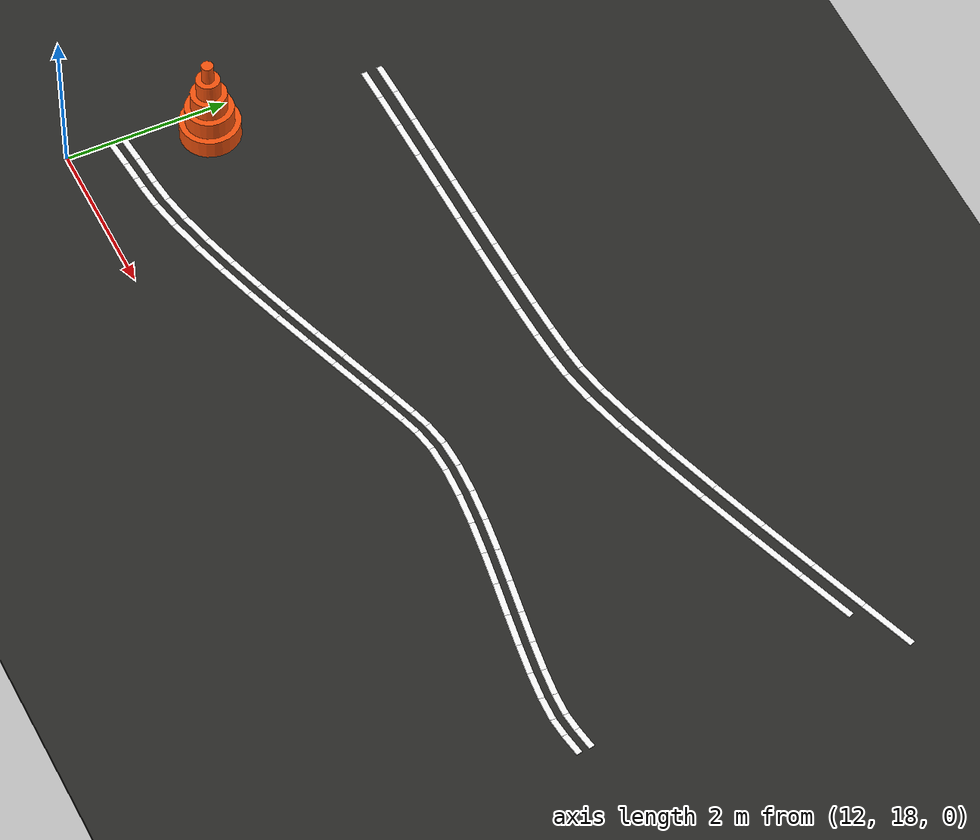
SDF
<sdf version="1.9">
 <world name="igvc_competition">
  <model name="asphalt_ground">
   <static>1</static>
   <pose>16.0000 4.0000 -0.0250 0.000000 0.000000 0.000000</pose>
   <link name="link">
    <collision name="collision"><geometry><box><size>60.0000 58.0000 0.0500</size></box></geometry></collision>
    <visual name="visual">
     <geometry><box><size>60.0000 58.0000 0.0500</size></box></geometry>
     <material>
      <ambient>0.16 0.16 0.15 1.0</ambient>
      <diffuse>0.16 0.16 0.15 1.0</diffuse>
      <specular>0.05 0.05 0.05 1</specular>
     </material>
    </visual>
   </link>
  </model>
  <model name="Line_001_0059">
   <static>1</static>
   <pose>22.0241 23.5799 0.011 0 0 -2.799809</pose>
   <link name="link">
    <visual name="visual">
     <geometry><box><size>0.7325 0.0762 0.012</size></box></geometry>
     <material>
      <ambient>0.98 0.98 0.98 1</ambient>
      <diffuse>0.98 0.98 0.98 1</diffuse>
      <specular>0.05 0.05 0.05 1</specular>
      <emissive>0.9 0.9 0.9 1</emissive>
     </material>
    </visual>
   </link>
  </model>
  <model name="Line_001_0060">
   <static>1</static>
   <pose>21.3852 23.1403 0.011 0 0 -2.799991</pose>
   <link name="link">
    <visual name="visual">
     <geometry><box><size>0.7663 0.0762 0.012</size></box></geometry>
     <material>
      <ambient>0.98 0.98 0.98 1</ambient>
      <diffuse>0.98 0.98 0.98 1</diffuse>
      <specular>0.05 0.05 0.05 1</specular>
      <emissive>0.9 0.9 0.9 1</emissive>
     </material>
    </visual>
   </link>
  </model>
  <model name="Line_001_0061">
   <static>1</static>
   <pose>21.3183 23.3289 0.011 0 0 -2.800062</pose>
   <link name="link">
    <visual name="visual">
     <geometry><box><size>0.7658 0.0762 0.012</size></box></geometry>
     <material>
      <ambient>0.98 0.98 0.98 1</ambient>
      <diffuse>0.98 0.98 0.98 1</diffuse>
      <specular>0.05 0.05 0.05 1</specular>
      <emissive>0.9 0.9 0.9 1</emissive>
     </material>
    </visual>
   </link>
  </model>
  <model name="Line_001_0062">
   <static>1</static>
   <pose>20.6593 22.8839 0.011 0 0 -2.803856</pose>
   <link name="link">
    <visual name="visual">
     <geometry><box><size>0.7735 0.0762 0.012</size></box></geometry>
     <material>
      <ambient>0.98 0.98 0.98 1</ambient>
      <diffuse>0.98 0.98 0.98 1</diffuse>
      <specular>0.05 0.05 0.05 1</specular>
      <emissive>0.9 0.9 0.9 1</emissive>
     </material>
    </visual>
   </link>
  </model>
  <model name="Line_001_0063">
   <static>1</static>
   <pose>20.5932 23.0726 0.011 0 0 -2.803751</pose>
   <link name="link">
    <visual name="visual">
     <geometry><box><size>0.7724 0.0762 0.012</size></box></geometry>
     <material>
      <ambient>0.98 0.98 0.98 1</ambient>
      <diffuse>0.98 0.98 0.98 1</diffuse>
      <specular>0.05 0.05 0.05 1</specular>
      <emissive>0.9 0.9 0.9 1</emissive>
     </material>
    </visual>
   </link>
  </model>
  <model name="Line_001_0064">
   <static>1</static>
   <pose>19.9378 22.6334 0.011 0 0 -2.811328</pose>
   <link name="link">
    <visual name="visual">
     <geometry><box><size>0.7539 0.0762 0.012</size></box></geometry>
     <material>
      <ambient>0.98 0.98 0.98 1</ambient>
      <diffuse>0.98 0.98 0.98 1</diffuse>
      <specular>0.05 0.05 0.05 1</specular>
      <emissive>0.9 0.9 0.9 1</emissive>
     </material>
    </visual>
   </link>
  </model>
  <model name="Line_001_0065">
   <static>1</static>
   <pose>19.8732 22.8227 0.011 0 0 -2.811346</pose>
   <link name="link">
    <visual name="visual">
     <geometry><box><size>0.7518 0.0762 0.012</size></box></geometry>
     <material>
      <ambient>0.98 0.98 0.98 1</ambient>
      <diffuse>0.98 0.98 0.98 1</diffuse>
      <specular>0.05 0.05 0.05 1</specular>
      <emissive>0.9 0.9 0.9 1</emissive>
     </material>
    </visual>
   </link>
  </model>
  <model name="Line_001_0066">
   <static>1</static>
   <pose>19.2451 22.4007 0.011 0 0 -2.824088</pose>
   <link name="link">
    <visual name="visual">
     <geometry><box><size>0.7076 0.0762 0.012</size></box></geometry>
     <material>
      <ambient>0.98 0.98 0.98 1</ambient>
      <diffuse>0.98 0.98 0.98 1</diffuse>
      <specular>0.05 0.05 0.05 1</specular>
      <emissive>0.9 0.9 0.9 1</emissive>
     </material>
    </visual>
   </link>
  </model>
  <model name="Line_001_0067">
   <static>1</static>
   <pose>19.1830 22.5908 0.011 0 0 -2.824107</pose>
   <link name="link">
    <visual name="visual">
     <geometry><box><size>0.7044 0.0762 0.012</size></box></geometry>
     <material>
      <ambient>0.98 0.98 0.98 1</ambient>
      <diffuse>0.98 0.98 0.98 1</diffuse>
      <specular>0.05 0.05 0.05 1</specular>
      <emissive>0.9 0.9 0.9 1</emissive>
     </material>
    </visual>
   </link>
  </model>
  <model name="Line_001_0068">
   <static>1</static>
   <pose>18.6053 22.1973 0.011 0 0 -2.844436</pose>
   <link name="link">
    <visual name="visual">
     <geometry><box><size>0.6352 0.0762 0.012</size></box></geometry>
     <material>
      <ambient>0.98 0.98 0.98 1</ambient>
      <diffuse>0.98 0.98 0.98 1</diffuse>
      <specular>0.05 0.05 0.05 1</specular>
      <emissive>0.9 0.9 0.9 1</emissive>
     </material>
    </visual>
   </link>
  </model>
  <model name="Line_001_0069">
   <static>1</static>
   <pose>18.5474 22.3887 0.011 0 0 -2.844355</pose>
   <link name="link">
    <visual name="visual">
     <geometry><box><size>0.6296 0.0762 0.012</size></box></geometry>
     <material>
      <ambient>0.98 0.98 0.98 1</ambient>
      <diffuse>0.98 0.98 0.98 1</diffuse>
      <specular>0.05 0.05 0.05 1</specular>
      <emissive>0.9 0.9 0.9 1</emissive>
     </material>
    </visual>
   </link>
  </model>
  <model name="Line_001_0070">
   <static>1</static>
   <pose>18.0420 22.0345 0.011 0 0 -2.879061</pose>
   <link name="link">
    <visual name="visual">
     <geometry><box><size>0.5375 0.0762 0.012</size></box></geometry>
     <material>
      <ambient>0.98 0.98 0.98 1</ambient>
      <diffuse>0.98 0.98 0.98 1</diffuse>
      <specular>0.05 0.05 0.05 1</specular>
      <emissive>0.9 0.9 0.9 1</emissive>
     </material>
    </visual>
   </link>
  </model>
  <model name="Line_001_0071">
   <static>1</static>
   <pose>17.9916 22.2280 0.011 0 0 -2.878915</pose>
   <link name="link">
    <visual name="visual">
     <geometry><box><size>0.5276 0.0762 0.012</size></box></geometry>
     <material>
      <ambient>0.98 0.98 0.98 1</ambient>
      <diffuse>0.98 0.98 0.98 1</diffuse>
      <specular>0.05 0.05 0.05 1</specular>
      <emissive>0.9 0.9 0.9 1</emissive>
     </material>
    </visual>
   </link>
  </model>
  <model name="Line_001_0072">
   <static>1</static>
   <pose>17.5790 21.9242 0.011 0 0 -2.944386</pose>
   <link name="link">
    <visual name="visual">
     <geometry><box><size>0.4149 0.0762 0.012</size></box></geometry>
     <material>
      <ambient>0.98 0.98 0.98 1</ambient>
      <diffuse>0.98 0.98 0.98 1</diffuse>
      <specular>0.05 0.05 0.05 1</specular>
      <emissive>0.9 0.9 0.9 1</emissive>
     </material>
    </visual>
   </link>
  </model>
  <model name="Line_001_0073">
   <static>1</static>
   <pose>17.5410 22.1204 0.011 0 0 -2.944344</pose>
   <link name="link">
    <visual name="visual">
     <geometry><box><size>0.3995 0.0762 0.012</size></box></geometry>
     <material>
      <ambient>0.98 0.98 0.98 1</ambient>
      <diffuse>0.98 0.98 0.98 1</diffuse>
      <specular>0.05 0.05 0.05 1</specular>
      <emissive>0.9 0.9 0.9 1</emissive>
     </material>
    </visual>
   </link>
  </model>
  <model name="Line_001_0074">
   <static>1</static>
   <pose>17.2276 21.8672 0.011 0 0 -3.032233</pose>
   <link name="link">
    <visual name="visual">
     <geometry><box><size>0.2978 0.0762 0.012</size></box></geometry>
     <material>
      <ambient>0.98 0.98 0.98 1</ambient>
      <diffuse>0.98 0.98 0.98 1</diffuse>
      <specular>0.05 0.05 0.05 1</specular>
      <emissive>0.9 0.9 0.9 1</emissive>
     </material>
    </visual>
   </link>
  </model>
  <model name="Line_001_0075">
   <static>1</static>
   <pose>17.2032 22.0656 0.011 0 0 -3.032406</pose>
   <link name="link">
    <visual name="visual">
     <geometry><box><size>0.2854 0.0762 0.012</size></box></geometry>
     <material>
      <ambient>0.98 0.98 0.98 1</ambient>
      <diffuse>0.98 0.98 0.98 1</diffuse>
      <specular>0.05 0.05 0.05 1</specular>
      <emissive>0.9 0.9 0.9 1</emissive>
     </material>
    </visual>
   </link>
  </model>
  <model name="Line_001_0076">
   <static>1</static>
   <pose>16.8955 21.8374 0.011 0 0 -3.068124</pose>
   <link name="link">
    <visual name="visual">
     <geometry><box><size>0.3692 0.0762 0.012</size></box></geometry>
     <material>
      <ambient>0.98 0.98 0.98 1</ambient>
      <diffuse>0.98 0.98 0.98 1</diffuse>
      <specular>0.05 0.05 0.05 1</specular>
      <emissive>0.9 0.9 0.9 1</emissive>
     </material>
    </visual>
   </link>
  </model>
  <model name="Line_001_0077">
   <static>1</static>
   <pose>16.8800 22.0368 0.011 0 0 -3.068385</pose>
   <link name="link">
    <visual name="visual">
     <geometry><box><size>0.3637 0.0762 0.012</size></box></geometry>
     <material>
      <ambient>0.98 0.98 0.98 1</ambient>
      <diffuse>0.98 0.98 0.98 1</diffuse>
      <specular>0.05 0.05 0.05 1</specular>
      <emissive>0.9 0.9 0.9 1</emissive>
     </material>
    </visual>
   </link>
  </model>
  <model name="Line_001_0078">
   <static>1</static>
   <pose>16.4969 21.8126 0.011 0 0 -3.088728</pose>
   <link name="link">
    <visual name="visual">
     <geometry><box><size>0.4296 0.0762 0.012</size></box></geometry>
     <material>
      <ambient>0.98 0.98 0.98 1</ambient>
      <diffuse>0.98 0.98 0.98 1</diffuse>
      <specular>0.05 0.05 0.05 1</specular>
      <emissive>0.9 0.9 0.9 1</emissive>
     </material>
    </visual>
   </link>
  </model>
  <model name="Line_001_0079">
   <static>1</static>
   <pose>16.4859 22.0122 0.011 0 0 -3.088541</pose>
   <link name="link">
    <visual name="visual">
     <geometry><box><size>0.4262 0.0762 0.012</size></box></geometry>
     <material>
      <ambient>0.98 0.98 0.98 1</ambient>
      <diffuse>0.98 0.98 0.98 1</diffuse>
      <specular>0.05 0.05 0.05 1</specular>
      <emissive>0.9 0.9 0.9 1</emissive>
     </material>
    </visual>
   </link>
  </model>
  <model name="Line_001_0080">
   <static>1</static>
   <pose>16.0441 21.7916 0.011 0 0 -3.101329</pose>
   <link name="link">
    <visual name="visual">
     <geometry><box><size>0.4770 0.0762 0.012</size></box></geometry>
     <material>
      <ambient>0.98 0.98 0.98 1</ambient>
      <diffuse>0.98 0.98 0.98 1</diffuse>
      <specular>0.05 0.05 0.05 1</specular>
      <emissive>0.9 0.9 0.9 1</emissive>
     </material>
    </visual>
   </link>
  </model>
  <model name="Line_001_0081">
   <static>1</static>
   <pose>16.0358 21.9914 0.011 0 0 -3.101370</pose>
   <link name="link">
    <visual name="visual">
     <geometry><box><size>0.4750 0.0762 0.012</size></box></geometry>
     <material>
      <ambient>0.98 0.98 0.98 1</ambient>
      <diffuse>0.98 0.98 0.98 1</diffuse>
      <specular>0.05 0.05 0.05 1</specular>
      <emissive>0.9 0.9 0.9 1</emissive>
     </material>
    </visual>
   </link>
  </model>
  <model name="Line_001_0082">
   <static>1</static>
   <pose>15.5503 21.7737 0.011 0 0 -3.109308</pose>
   <link name="link">
    <visual name="visual">
     <geometry><box><size>0.5112 0.0762 0.012</size></box></geometry>
     <material>
      <ambient>0.98 0.98 0.98 1</ambient>
      <diffuse>0.98 0.98 0.98 1</diffuse>
      <specular>0.05 0.05 0.05 1</specular>
      <emissive>0.9 0.9 0.9 1</emissive>
     </material>
    </visual>
   </link>
  </model>
  <model name="Line_001_0083">
   <static>1</static>
   <pose>15.5437 21.9736 0.011 0 0 -3.109422</pose>
   <link name="link">
    <visual name="visual">
     <geometry><box><size>0.5099 0.0762 0.012</size></box></geometry>
     <material>
      <ambient>0.98 0.98 0.98 1</ambient>
      <diffuse>0.98 0.98 0.98 1</diffuse>
      <specular>0.05 0.05 0.05 1</specular>
      <emissive>0.9 0.9 0.9 1</emissive>
     </material>
    </visual>
   </link>
  </model>
  <model name="Line_001_0084">
   <static>1</static>
   <pose>15.0290 21.7582 0.011 0 0 -3.114140</pose>
   <link name="link">
    <visual name="visual">
     <geometry><box><size>0.5319 0.0762 0.012</size></box></geometry>
     <material>
      <ambient>0.98 0.98 0.98 1</ambient>
      <diffuse>0.98 0.98 0.98 1</diffuse>
      <specular>0.05 0.05 0.05 1</specular>
      <emissive>0.9 0.9 0.9 1</emissive>
     </material>
    </visual>
   </link>
  </model>
  <model name="Line_001_0085">
   <static>1</static>
   <pose>15.0235 21.9581 0.011 0 0 -3.114287</pose>
   <link name="link">
    <visual name="visual">
     <geometry><box><size>0.5311 0.0762 0.012</size></box></geometry>
     <material>
      <ambient>0.98 0.98 0.98 1</ambient>
      <diffuse>0.98 0.98 0.98 1</diffuse>
      <specular>0.05 0.05 0.05 1</specular>
      <emissive>0.9 0.9 0.9 1</emissive>
     </material>
    </visual>
   </link>
  </model>
  <model name="Line_001_0086">
   <static>1</static>
   <pose>14.4938 21.7443 0.011 0 0 -3.116913</pose>
   <link name="link">
    <visual name="visual">
     <geometry><box><size>0.5390 0.0762 0.012</size></box></geometry>
     <material>
      <ambient>0.98 0.98 0.98 1</ambient>
      <diffuse>0.98 0.98 0.98 1</diffuse>
      <specular>0.05 0.05 0.05 1</specular>
      <emissive>0.9 0.9 0.9 1</emissive>
     </material>
    </visual>
   </link>
  </model>
  <model name="Line_001_0087">
   <static>1</static>
   <pose>14.4887 21.9442 0.011 0 0 -3.116714</pose>
   <link name="link">
    <visual name="visual">
     <geometry><box><size>0.5387 0.0762 0.012</size></box></geometry>
     <material>
      <ambient>0.98 0.98 0.98 1</ambient>
      <diffuse>0.98 0.98 0.98 1</diffuse>
      <specular>0.05 0.05 0.05 1</specular>
      <emissive>0.9 0.9 0.9 1</emissive>
     </material>
    </visual>
   </link>
  </model>
  <model name="Line_001_0088">
   <static>1</static>
   <pose>13.9582 21.7311 0.011 0 0 -3.117367</pose>
   <link name="link">
    <visual name="visual">
     <geometry><box><size>0.5326 0.0762 0.012</size></box></geometry>
     <material>
      <ambient>0.98 0.98 0.98 1</ambient>
      <diffuse>0.98 0.98 0.98 1</diffuse>
      <specular>0.05 0.05 0.05 1</specular>
      <emissive>0.9 0.9 0.9 1</emissive>
     </material>
    </visual>
   </link>
  </model>
  <model name="Line_001_0089">
   <static>1</static>
   <pose>13.9533 21.9310 0.011 0 0 -3.117372</pose>
   <link name="link">
    <visual name="visual">
     <geometry><box><size>0.5327 0.0762 0.012</size></box></geometry>
     <material>
      <ambient>0.98 0.98 0.98 1</ambient>
      <diffuse>0.98 0.98 0.98 1</diffuse>
      <specular>0.05 0.05 0.05 1</specular>
      <emissive>0.9 0.9 0.9 1</emissive>
     </material>
    </visual>
   </link>
  </model>
  <model name="Line_001_0090">
   <static>1</static>
   <pose>13.4359 21.7180 0.011 0 0 -3.115632</pose>
   <link name="link">
    <visual name="visual">
     <geometry><box><size>0.5124 0.0762 0.012</size></box></geometry>
     <material>
      <ambient>0.98 0.98 0.98 1</ambient>
      <diffuse>0.98 0.98 0.98 1</diffuse>
      <specular>0.05 0.05 0.05 1</specular>
      <emissive>0.9 0.9 0.9 1</emissive>
     </material>
    </visual>
   </link>
  </model>
  <model name="Line_001_0091">
   <static>1</static>
   <pose>13.4306 21.9180 0.011 0 0 -3.115662</pose>
   <link name="link">
    <visual name="visual">
     <geometry><box><size>0.5130 0.0762 0.012</size></box></geometry>
     <material>
      <ambient>0.98 0.98 0.98 1</ambient>
      <diffuse>0.98 0.98 0.98 1</diffuse>
      <specular>0.05 0.05 0.05 1</specular>
      <emissive>0.9 0.9 0.9 1</emissive>
     </material>
    </visual>
   </link>
  </model>
  <model name="Line_001_0092">
   <static>1</static>
   <pose>12.9405 21.7043 0.011 0 0 -3.111723</pose>
   <link name="link">
    <visual name="visual">
     <geometry><box><size>0.4788 0.0762 0.012</size></box></geometry>
     <material>
      <ambient>0.98 0.98 0.98 1</ambient>
      <diffuse>0.98 0.98 0.98 1</diffuse>
      <specular>0.05 0.05 0.05 1</specular>
      <emissive>0.9 0.9 0.9 1</emissive>
     </material>
    </visual>
   </link>
  </model>
  <model name="Line_001_0093">
   <static>1</static>
   <pose>12.9344 21.9042 0.011 0 0 -3.111791</pose>
   <link name="link">
    <visual name="visual">
     <geometry><box><size>0.4799 0.0762 0.012</size></box></geometry>
     <material>
      <ambient>0.98 0.98 0.98 1</ambient>
      <diffuse>0.98 0.98 0.98 1</diffuse>
      <specular>0.05 0.05 0.05 1</specular>
      <emissive>0.9 0.9 0.9 1</emissive>
     </material>
    </visual>
   </link>
  </model>
  <model name="Line_001_0094">
   <static>1</static>
   <pose>12.4857 21.6890 0.011 0 0 -3.104015</pose>
   <link name="link">
    <visual name="visual">
     <geometry><box><size>0.4312 0.0762 0.012</size></box></geometry>
     <material>
      <ambient>0.98 0.98 0.98 1</ambient>
      <diffuse>0.98 0.98 0.98 1</diffuse>
      <specular>0.05 0.05 0.05 1</specular>
      <emissive>0.9 0.9 0.9 1</emissive>
     </material>
    </visual>
   </link>
  </model>
  <model name="Line_001_0095">
   <static>1</static>
   <pose>12.4780 21.8889 0.011 0 0 -3.104197</pose>
   <link name="link">
    <visual name="visual">
     <geometry><box><size>0.4333 0.0762 0.012</size></box></geometry>
     <material>
      <ambient>0.98 0.98 0.98 1</ambient>
      <diffuse>0.98 0.98 0.98 1</diffuse>
      <specular>0.05 0.05 0.05 1</specular>
      <emissive>0.9 0.9 0.9 1</emissive>
     </material>
    </visual>
   </link>
  </model>
  <model name="Line_002_0048">
   <static>1</static>
   <pose>21.9990 19.7384 0.011 0 0 -2.984973</pose>
   <link name="link">
    <visual name="visual">
     <geometry><box><size>0.2853 0.0762 0.012</size></box></geometry>
     <material>
      <ambient>0.98 0.98 0.98 1</ambient>
      <diffuse>0.98 0.98 0.98 1</diffuse>
      <specular>0.05 0.05 0.05 1</specular>
      <emissive>0.9 0.9 0.9 1</emissive>
     </material>
    </visual>
   </link>
  </model>
  <model name="Line_002_0049">
   <static>1</static>
   <pose>21.9804 19.8953 0.011 0 0 -2.985352</pose>
   <link name="link">
    <visual name="visual">
     <geometry><box><size>0.2879 0.0762 0.012</size></box></geometry>
     <material>
      <ambient>0.98 0.98 0.98 1</ambient>
      <diffuse>0.98 0.98 0.98 1</diffuse>
      <specular>0.05 0.05 0.05 1</specular>
      <emissive>0.9 0.9 0.9 1</emissive>
     </material>
    </visual>
   </link>
  </model>
  <model name="Line_002_0050">
   <static>1</static>
   <pose>21.7365 19.7039 0.011 0 0 -3.041191</pose>
   <link name="link">
    <visual name="visual">
     <geometry><box><size>0.2444 0.0762 0.012</size></box></geometry>
     <material>
      <ambient>0.98 0.98 0.98 1</ambient>
      <diffuse>0.98 0.98 0.98 1</diffuse>
      <specular>0.05 0.05 0.05 1</specular>
      <emissive>0.9 0.9 0.9 1</emissive>
     </material>
    </visual>
   </link>
  </model>
  <model name="Line_002_0051">
   <static>1</static>
   <pose>21.7242 19.8612 0.011 0 0 -3.039709</pose>
   <link name="link">
    <visual name="visual">
     <geometry><box><size>0.2291 0.0762 0.012</size></box></geometry>
     <material>
      <ambient>0.98 0.98 0.98 1</ambient>
      <diffuse>0.98 0.98 0.98 1</diffuse>
      <specular>0.05 0.05 0.05 1</specular>
      <emissive>0.9 0.9 0.9 1</emissive>
     </material>
    </visual>
   </link>
  </model>
  <model name="Line_002_0052">
   <static>1</static>
   <pose>21.4611 19.6955 0.011 0 0 3.116557</pose>
   <link name="link">
    <visual name="visual">
     <geometry><box><size>0.3076 0.0762 0.012</size></box></geometry>
     <material>
      <ambient>0.98 0.98 0.98 1</ambient>
      <diffuse>0.98 0.98 0.98 1</diffuse>
      <specular>0.05 0.05 0.05 1</specular>
      <emissive>0.9 0.9 0.9 1</emissive>
     </material>
    </visual>
   </link>
  </model>
  <model name="Line_002_0053">
   <static>1</static>
   <pose>21.4646 19.8533 0.011 0 0 3.115852</pose>
   <link name="link">
    <visual name="visual">
     <geometry><box><size>0.2914 0.0762 0.012</size></box></geometry>
     <material>
      <ambient>0.98 0.98 0.98 1</ambient>
      <diffuse>0.98 0.98 0.98 1</diffuse>
      <specular>0.05 0.05 0.05 1</specular>
      <emissive>0.9 0.9 0.9 1</emissive>
     </material>
    </visual>
   </link>
  </model>
  <model name="Line_002_0054">
   <static>1</static>
   <pose>21.1296 19.7156 0.011 0 0 3.050198</pose>
   <link name="link">
    <visual name="visual">
     <geometry><box><size>0.3572 0.0762 0.012</size></box></geometry>
     <material>
      <ambient>0.98 0.98 0.98 1</ambient>
      <diffuse>0.98 0.98 0.98 1</diffuse>
      <specular>0.05 0.05 0.05 1</specular>
      <emissive>0.9 0.9 0.9 1</emissive>
     </material>
    </visual>
   </link>
  </model>
  <model name="Line_002_0055">
   <static>1</static>
   <pose>21.1454 19.8731 0.011 0 0 3.049686</pose>
   <link name="link">
    <visual name="visual">
     <geometry><box><size>0.3487 0.0762 0.012</size></box></geometry>
     <material>
      <ambient>0.98 0.98 0.98 1</ambient>
      <diffuse>0.98 0.98 0.98 1</diffuse>
      <specular>0.05 0.05 0.05 1</specular>
      <emissive>0.9 0.9 0.9 1</emissive>
     </material>
    </visual>
   </link>
  </model>
  <model name="Line_002_0056">
   <static>1</static>
   <pose>20.7547 19.7571 0.011 0 0 3.014365</pose>
   <link name="link">
    <visual name="visual">
     <geometry><box><size>0.3972 0.0762 0.012</size></box></geometry>
     <material>
      <ambient>0.98 0.98 0.98 1</ambient>
      <diffuse>0.98 0.98 0.98 1</diffuse>
      <specular>0.05 0.05 0.05 1</specular>
      <emissive>0.9 0.9 0.9 1</emissive>
     </material>
    </visual>
   </link>
  </model>
  <model name="Line_002_0057">
   <static>1</static>
   <pose>20.7770 19.9140 0.011 0 0 3.014459</pose>
   <link name="link">
    <visual name="visual">
     <geometry><box><size>0.3928 0.0762 0.012</size></box></geometry>
     <material>
      <ambient>0.98 0.98 0.98 1</ambient>
      <diffuse>0.98 0.98 0.98 1</diffuse>
      <specular>0.05 0.05 0.05 1</specular>
      <emissive>0.9 0.9 0.9 1</emissive>
     </material>
    </visual>
   </link>
  </model>
  <model name="Line_002_0058">
   <static>1</static>
   <pose>20.3469 19.8129 0.011 0 0 2.997405</pose>
   <link name="link">
    <visual name="visual">
     <geometry><box><size>0.4259 0.0762 0.012</size></box></geometry>
     <material>
      <ambient>0.98 0.98 0.98 1</ambient>
      <diffuse>0.98 0.98 0.98 1</diffuse>
      <specular>0.05 0.05 0.05 1</specular>
      <emissive>0.9 0.9 0.9 1</emissive>
     </material>
    </visual>
   </link>
  </model>
  <model name="Line_002_0059">
   <static>1</static>
   <pose>20.3723 19.9694 0.011 0 0 2.997295</pose>
   <link name="link">
    <visual name="visual">
     <geometry><box><size>0.4242 0.0762 0.012</size></box></geometry>
     <material>
      <ambient>0.98 0.98 0.98 1</ambient>
      <diffuse>0.98 0.98 0.98 1</diffuse>
      <specular>0.05 0.05 0.05 1</specular>
      <emissive>0.9 0.9 0.9 1</emissive>
     </material>
    </visual>
   </link>
  </model>
  <model name="Line_002_0060">
   <static>1</static>
   <pose>19.9174 19.8761 0.011 0 0 2.993653</pose>
   <link name="link">
    <visual name="visual">
     <geometry><box><size>0.4423 0.0762 0.012</size></box></geometry>
     <material>
      <ambient>0.98 0.98 0.98 1</ambient>
      <diffuse>0.98 0.98 0.98 1</diffuse>
      <specular>0.05 0.05 0.05 1</specular>
      <emissive>0.9 0.9 0.9 1</emissive>
     </material>
    </visual>
   </link>
  </model>
  <model name="Line_002_0061">
   <static>1</static>
   <pose>19.9435 20.0325 0.011 0 0 2.993753</pose>
   <link name="link">
    <visual name="visual">
     <geometry><box><size>0.4426 0.0762 0.012</size></box></geometry>
     <material>
      <ambient>0.98 0.98 0.98 1</ambient>
      <diffuse>0.98 0.98 0.98 1</diffuse>
      <specular>0.05 0.05 0.05 1</specular>
      <emissive>0.9 0.9 0.9 1</emissive>
     </material>
    </visual>
   </link>
  </model>
  <model name="Line_002_0062">
   <static>1</static>
   <pose>19.4777 19.9399 0.011 0 0 3.001343</pose>
   <link name="link">
    <visual name="visual">
     <geometry><box><size>0.4464 0.0762 0.012</size></box></geometry>
     <material>
      <ambient>0.98 0.98 0.98 1</ambient>
      <diffuse>0.98 0.98 0.98 1</diffuse>
      <specular>0.05 0.05 0.05 1</specular>
      <emissive>0.9 0.9 0.9 1</emissive>
     </material>
    </visual>
   </link>
  </model>
  <model name="Line_002_0063">
   <static>1</static>
   <pose>19.5024 20.0965 0.011 0 0 3.001177</pose>
   <link name="link">
    <visual name="visual">
     <geometry><box><size>0.4487 0.0762 0.012</size></box></geometry>
     <material>
      <ambient>0.98 0.98 0.98 1</ambient>
      <diffuse>0.98 0.98 0.98 1</diffuse>
      <specular>0.05 0.05 0.05 1</specular>
      <emissive>0.9 0.9 0.9 1</emissive>
     </material>
    </visual>
   </link>
  </model>
  <model name="Line_002_0064">
   <static>1</static>
   <pose>19.0393 19.9975 0.011 0 0 3.020722</pose>
   <link name="link">
    <visual name="visual">
     <geometry><box><size>0.4379 0.0762 0.012</size></box></geometry>
     <material>
      <ambient>0.98 0.98 0.98 1</ambient>
      <diffuse>0.98 0.98 0.98 1</diffuse>
      <specular>0.05 0.05 0.05 1</specular>
      <emissive>0.9 0.9 0.9 1</emissive>
     </material>
    </visual>
   </link>
  </model>
  <model name="Line_002_0065">
   <static>1</static>
   <pose>19.0607 20.1546 0.011 0 0 3.020799</pose>
   <link name="link">
    <visual name="visual">
     <geometry><box><size>0.4423 0.0762 0.012</size></box></geometry>
     <material>
      <ambient>0.98 0.98 0.98 1</ambient>
      <diffuse>0.98 0.98 0.98 1</diffuse>
      <specular>0.05 0.05 0.05 1</specular>
      <emissive>0.9 0.9 0.9 1</emissive>
     </material>
    </visual>
   </link>
  </model>
  <model name="Line_002_0066">
   <static>1</static>
   <pose>18.6144 20.0421 0.011 0 0 3.054169</pose>
   <link name="link">
    <visual name="visual">
     <geometry><box><size>0.4169 0.0762 0.012</size></box></geometry>
     <material>
      <ambient>0.98 0.98 0.98 1</ambient>
      <diffuse>0.98 0.98 0.98 1</diffuse>
      <specular>0.05 0.05 0.05 1</specular>
      <emissive>0.9 0.9 0.9 1</emissive>
     </material>
    </visual>
   </link>
  </model>
  <model name="Line_002_0067">
   <static>1</static>
   <pose>18.6300 20.1996 0.011 0 0 3.054476</pose>
   <link name="link">
    <visual name="visual">
     <geometry><box><size>0.4241 0.0762 0.012</size></box></geometry>
     <material>
      <ambient>0.98 0.98 0.98 1</ambient>
      <diffuse>0.98 0.98 0.98 1</diffuse>
      <specular>0.05 0.05 0.05 1</specular>
      <emissive>0.9 0.9 0.9 1</emissive>
     </material>
    </visual>
   </link>
  </model>
  <model name="Line_002_0068">
   <static>1</static>
   <pose>18.2148 20.0669 0.011 0 0 3.106944</pose>
   <link name="link">
    <visual name="visual">
     <geometry><box><size>0.3839 0.0762 0.012</size></box></geometry>
     <material>
      <ambient>0.98 0.98 0.98 1</ambient>
      <diffuse>0.98 0.98 0.98 1</diffuse>
      <specular>0.05 0.05 0.05 1</specular>
      <emissive>0.9 0.9 0.9 1</emissive>
     </material>
    </visual>
   </link>
  </model>
  <model name="Line_002_0069">
   <static>1</static>
   <pose>18.2212 20.2249 0.011 0 0 3.106932</pose>
   <link name="link">
    <visual name="visual">
     <geometry><box><size>0.3953 0.0762 0.012</size></box></geometry>
     <material>
      <ambient>0.98 0.98 0.98 1</ambient>
      <diffuse>0.98 0.98 0.98 1</diffuse>
      <specular>0.05 0.05 0.05 1</specular>
      <emissive>0.9 0.9 0.9 1</emissive>
     </material>
    </visual>
   </link>
  </model>
  <model name="Line_002_0070">
   <static>1</static>
   <pose>17.8534 20.0656 0.011 0 0 -3.094458</pose>
   <link name="link">
    <visual name="visual">
     <geometry><box><size>0.3396 0.0762 0.012</size></box></geometry>
     <material>
      <ambient>0.98 0.98 0.98 1</ambient>
      <diffuse>0.98 0.98 0.98 1</diffuse>
      <specular>0.05 0.05 0.05 1</specular>
      <emissive>0.9 0.9 0.9 1</emissive>
     </material>
    </visual>
   </link>
  </model>
  <model name="Line_002_0071">
   <static>1</static>
   <pose>17.8451 20.2233 0.011 0 0 -3.093743</pose>
   <link name="link">
    <visual name="visual">
     <geometry><box><size>0.3575 0.0762 0.012</size></box></geometry>
     <material>
      <ambient>0.98 0.98 0.98 1</ambient>
      <diffuse>0.98 0.98 0.98 1</diffuse>
      <specular>0.05 0.05 0.05 1</specular>
      <emissive>0.9 0.9 0.9 1</emissive>
     </material>
    </visual>
   </link>
  </model>
  <model name="Line_002_0072">
   <static>1</static>
   <pose>17.5414 20.0318 0.011 0 0 -2.962357</pose>
   <link name="link">
    <visual name="visual">
     <geometry><box><size>0.2894 0.0762 0.012</size></box></geometry>
     <material>
      <ambient>0.98 0.98 0.98 1</ambient>
      <diffuse>0.98 0.98 0.98 1</diffuse>
      <specular>0.05 0.05 0.05 1</specular>
      <emissive>0.9 0.9 0.9 1</emissive>
     </material>
    </visual>
   </link>
  </model>
  <model name="Line_002_0073">
   <static>1</static>
   <pose>17.5137 20.1870 0.011 0 0 -2.962574</pose>
   <link name="link">
    <visual name="visual">
     <geometry><box><size>0.3106 0.0762 0.012</size></box></geometry>
     <material>
      <ambient>0.98 0.98 0.98 1</ambient>
      <diffuse>0.98 0.98 0.98 1</diffuse>
      <specular>0.05 0.05 0.05 1</specular>
      <emissive>0.9 0.9 0.9 1</emissive>
     </material>
    </visual>
   </link>
  </model>
  <model name="Line_002_0074">
   <static>1</static>
   <pose>17.2846 19.9708 0.011 0 0 -2.843217</pose>
   <link name="link">
    <visual name="visual">
     <geometry><box><size>0.2395 0.0762 0.012</size></box></geometry>
     <material>
      <ambient>0.98 0.98 0.98 1</ambient>
      <diffuse>0.98 0.98 0.98 1</diffuse>
      <specular>0.05 0.05 0.05 1</specular>
      <emissive>0.9 0.9 0.9 1</emissive>
     </material>
    </visual>
   </link>
  </model>
  <model name="Line_002_0075">
   <static>1</static>
   <pose>17.2406 20.1226 0.011 0 0 -2.844350</pose>
   <link name="link">
    <visual name="visual">
     <geometry><box><size>0.2516 0.0762 0.012</size></box></geometry>
     <material>
      <ambient>0.98 0.98 0.98 1</ambient>
      <diffuse>0.98 0.98 0.98 1</diffuse>
      <specular>0.05 0.05 0.05 1</specular>
      <emissive>0.9 0.9 0.9 1</emissive>
     </material>
    </visual>
   </link>
  </model>
  <model name="Line_002_0076">
   <static>1</static>
   <pose>17.0194 19.8849 0.011 0 0 -2.817456</pose>
   <link name="link">
    <visual name="visual">
     <geometry><box><size>0.3181 0.0762 0.012</size></box></geometry>
     <material>
      <ambient>0.98 0.98 0.98 1</ambient>
      <diffuse>0.98 0.98 0.98 1</diffuse>
      <specular>0.05 0.05 0.05 1</specular>
      <emissive>0.9 0.9 0.9 1</emissive>
     </material>
    </visual>
   </link>
  </model>
  <model name="Line_002_0077">
   <static>1</static>
   <pose>16.9680 20.0345 0.011 0 0 -2.817479</pose>
   <link name="link">
    <visual name="visual">
     <geometry><box><size>0.3212 0.0762 0.012</size></box></geometry>
     <material>
      <ambient>0.98 0.98 0.98 1</ambient>
      <diffuse>0.98 0.98 0.98 1</diffuse>
      <specular>0.05 0.05 0.05 1</specular>
      <emissive>0.9 0.9 0.9 1</emissive>
     </material>
    </visual>
   </link>
  </model>
  <model name="Line_002_0078">
   <static>1</static>
   <pose>16.6895 19.7719 0.011 0 0 -2.806672</pose>
   <link name="link">
    <visual name="visual">
     <geometry><box><size>0.3794 0.0762 0.012</size></box></geometry>
     <material>
      <ambient>0.98 0.98 0.98 1</ambient>
      <diffuse>0.98 0.98 0.98 1</diffuse>
      <specular>0.05 0.05 0.05 1</specular>
      <emissive>0.9 0.9 0.9 1</emissive>
     </material>
    </visual>
   </link>
  </model>
  <model name="Line_002_0079">
   <static>1</static>
   <pose>16.6361 19.9209 0.011 0 0 -2.806629</pose>
   <link name="link">
    <visual name="visual">
     <geometry><box><size>0.3806 0.0762 0.012</size></box></geometry>
     <material>
      <ambient>0.98 0.98 0.98 1</ambient>
      <diffuse>0.98 0.98 0.98 1</diffuse>
      <specular>0.05 0.05 0.05 1</specular>
      <emissive>0.9 0.9 0.9 1</emissive>
     </material>
    </visual>
   </link>
  </model>
  <model name="Line_002_0080">
   <static>1</static>
   <pose>16.3092 19.6389 0.011 0 0 -2.803601</pose>
   <link name="link">
    <visual name="visual">
     <geometry><box><size>0.4264 0.0762 0.012</size></box></geometry>
     <material>
      <ambient>0.98 0.98 0.98 1</ambient>
      <diffuse>0.98 0.98 0.98 1</diffuse>
      <specular>0.05 0.05 0.05 1</specular>
      <emissive>0.9 0.9 0.9 1</emissive>
     </material>
    </visual>
   </link>
  </model>
  <model name="Line_002_0081">
   <static>1</static>
   <pose>16.2552 19.7876 0.011 0 0 -2.803756</pose>
   <link name="link">
    <visual name="visual">
     <geometry><box><size>0.4266 0.0762 0.012</size></box></geometry>
     <material>
      <ambient>0.98 0.98 0.98 1</ambient>
      <diffuse>0.98 0.98 0.98 1</diffuse>
      <specular>0.05 0.05 0.05 1</specular>
      <emissive>0.9 0.9 0.9 1</emissive>
     </material>
    </visual>
   </link>
  </model>
  <model name="Line_002_0082">
   <static>1</static>
   <pose>15.8910 19.4924 0.011 0 0 -2.805534</pose>
   <link name="link">
    <visual name="visual">
     <geometry><box><size>0.4597 0.0762 0.012</size></box></geometry>
     <material>
      <ambient>0.98 0.98 0.98 1</ambient>
      <diffuse>0.98 0.98 0.98 1</diffuse>
      <specular>0.05 0.05 0.05 1</specular>
      <emissive>0.9 0.9 0.9 1</emissive>
     </material>
    </visual>
   </link>
  </model>
  <model name="Line_002_0083">
   <static>1</static>
   <pose>15.8372 19.6412 0.011 0 0 -2.805442</pose>
   <link name="link">
    <visual name="visual">
     <geometry><box><size>0.4590 0.0762 0.012</size></box></geometry>
     <material>
      <ambient>0.98 0.98 0.98 1</ambient>
      <diffuse>0.98 0.98 0.98 1</diffuse>
      <specular>0.05 0.05 0.05 1</specular>
      <emissive>0.9 0.9 0.9 1</emissive>
     </material>
    </visual>
   </link>
  </model>
  <model name="Line_002_0084">
   <static>1</static>
   <pose>15.4474 19.3391 0.011 0 0 -2.811786</pose>
   <link name="link">
    <visual name="visual">
     <geometry><box><size>0.4789 0.0762 0.012</size></box></geometry>
     <material>
      <ambient>0.98 0.98 0.98 1</ambient>
      <diffuse>0.98 0.98 0.98 1</diffuse>
      <specular>0.05 0.05 0.05 1</specular>
      <emissive>0.9 0.9 0.9 1</emissive>
     </material>
    </visual>
   </link>
  </model>
  <model name="Line_002_0085">
   <static>1</static>
   <pose>15.3947 19.4881 0.011 0 0 -2.811697</pose>
   <link name="link">
    <visual name="visual">
     <geometry><box><size>0.4776 0.0762 0.012</size></box></geometry>
     <material>
      <ambient>0.98 0.98 0.98 1</ambient>
      <diffuse>0.98 0.98 0.98 1</diffuse>
      <specular>0.05 0.05 0.05 1</specular>
      <emissive>0.9 0.9 0.9 1</emissive>
     </material>
    </visual>
   </link>
  </model>
  <model name="Line_002_0086">
   <static>1</static>
   <pose>14.9909 19.1854 0.011 0 0 -2.822061</pose>
   <link name="link">
    <visual name="visual">
     <geometry><box><size>0.4845 0.0762 0.012</size></box></geometry>
     <material>
      <ambient>0.98 0.98 0.98 1</ambient>
      <diffuse>0.98 0.98 0.98 1</diffuse>
      <specular>0.05 0.05 0.05 1</specular>
      <emissive>0.9 0.9 0.9 1</emissive>
     </material>
    </visual>
   </link>
  </model>
  <model name="Line_002_0087">
   <static>1</static>
   <pose>14.9398 19.3351 0.011 0 0 -2.822268</pose>
   <link name="link">
    <visual name="visual">
     <geometry><box><size>0.4823 0.0762 0.012</size></box></geometry>
     <material>
      <ambient>0.98 0.98 0.98 1</ambient>
      <diffuse>0.98 0.98 0.98 1</diffuse>
      <specular>0.05 0.05 0.05 1</specular>
      <emissive>0.9 0.9 0.9 1</emissive>
     </material>
    </visual>
   </link>
  </model>
  <model name="Line_002_0088">
   <static>1</static>
   <pose>14.5336 19.0380 0.011 0 0 -2.837631</pose>
   <link name="link">
    <visual name="visual">
     <geometry><box><size>0.4764 0.0762 0.012</size></box></geometry>
     <material>
      <ambient>0.98 0.98 0.98 1</ambient>
      <diffuse>0.98 0.98 0.98 1</diffuse>
      <specular>0.05 0.05 0.05 1</specular>
      <emissive>0.9 0.9 0.9 1</emissive>
     </material>
    </visual>
   </link>
  </model>
  <model name="Line_002_0089">
   <static>1</static>
   <pose>14.4851 19.1885 0.011 0 0 -2.837548</pose>
   <link name="link">
    <visual name="visual">
     <geometry><box><size>0.4733 0.0762 0.012</size></box></geometry>
     <material>
      <ambient>0.98 0.98 0.98 1</ambient>
      <diffuse>0.98 0.98 0.98 1</diffuse>
      <specular>0.05 0.05 0.05 1</specular>
      <emissive>0.9 0.9 0.9 1</emissive>
     </material>
    </visual>
   </link>
  </model>
  <model name="Line_002_0090">
   <static>1</static>
   <pose>14.0877 18.9035 0.011 0 0 -2.860154</pose>
   <link name="link">
    <visual name="visual">
     <geometry><box><size>0.4551 0.0762 0.012</size></box></geometry>
     <material>
      <ambient>0.98 0.98 0.98 1</ambient>
      <diffuse>0.98 0.98 0.98 1</diffuse>
      <specular>0.05 0.05 0.05 1</specular>
      <emissive>0.9 0.9 0.9 1</emissive>
     </material>
    </visual>
   </link>
  </model>
  <model name="Line_002_0091">
   <static>1</static>
   <pose>14.0429 19.0551 0.011 0 0 -2.859939</pose>
   <link name="link">
    <visual name="visual">
     <geometry><box><size>0.4504 0.0762 0.012</size></box></geometry>
     <material>
      <ambient>0.98 0.98 0.98 1</ambient>
      <diffuse>0.98 0.98 0.98 1</diffuse>
      <specular>0.05 0.05 0.05 1</specular>
      <emissive>0.9 0.9 0.9 1</emissive>
     </material>
    </visual>
   </link>
  </model>
  <model name="Line_002_0092">
   <static>1</static>
   <pose>13.6653 18.7884 0.011 0 0 -2.892060</pose>
   <link name="link">
    <visual name="visual">
     <geometry><box><size>0.4207 0.0762 0.012</size></box></geometry>
     <material>
      <ambient>0.98 0.98 0.98 1</ambient>
      <diffuse>0.98 0.98 0.98 1</diffuse>
      <specular>0.05 0.05 0.05 1</specular>
      <emissive>0.9 0.9 0.9 1</emissive>
     </material>
    </visual>
   </link>
  </model>
  <model name="Line_002_0093">
   <static>1</static>
   <pose>13.6260 18.9414 0.011 0 0 -2.892102</pose>
   <link name="link">
    <visual name="visual">
     <geometry><box><size>0.4139 0.0762 0.012</size></box></geometry>
     <material>
      <ambient>0.98 0.98 0.98 1</ambient>
      <diffuse>0.98 0.98 0.98 1</diffuse>
      <specular>0.05 0.05 0.05 1</specular>
      <emissive>0.9 0.9 0.9 1</emissive>
     </material>
    </visual>
   </link>
  </model>
  <model name="Line_002_0094">
   <static>1</static>
   <pose>13.2780 18.6990 0.011 0 0 -2.940687</pose>
   <link name="link">
    <visual name="visual">
     <geometry><box><size>0.3743 0.0762 0.012</size></box></geometry>
     <material>
      <ambient>0.98 0.98 0.98 1</ambient>
      <diffuse>0.98 0.98 0.98 1</diffuse>
      <specular>0.05 0.05 0.05 1</specular>
      <emissive>0.9 0.9 0.9 1</emissive>
     </material>
    </visual>
   </link>
  </model>
  <model name="Line_002_0095">
   <static>1</static>
   <pose>13.2474 18.8540 0.011 0 0 -2.940583</pose>
   <link name="link">
    <visual name="visual">
     <geometry><box><size>0.3636 0.0762 0.012</size></box></geometry>
     <material>
      <ambient>0.98 0.98 0.98 1</ambient>
      <diffuse>0.98 0.98 0.98 1</diffuse>
      <specular>0.05 0.05 0.05 1</specular>
      <emissive>0.9 0.9 0.9 1</emissive>
     </material>
    </visual>
   </link>
  </model>
  <model name="Line_002_0096">
   <static>1</static>
   <pose>12.9389 18.6425 0.011 0 0 -3.018898</pose>
   <link name="link">
    <visual name="visual">
     <geometry><box><size>0.3138 0.0762 0.012</size></box></geometry>
     <material>
      <ambient>0.98 0.98 0.98 1</ambient>
      <diffuse>0.98 0.98 0.98 1</diffuse>
      <specular>0.05 0.05 0.05 1</specular>
      <emissive>0.9 0.9 0.9 1</emissive>
     </material>
    </visual>
   </link>
  </model>
  <model name="Line_002_0097">
   <static>1</static>
   <pose>12.9186 18.7991 0.011 0 0 -3.019036</pose>
   <link name="link">
    <visual name="visual">
     <geometry><box><size>0.3035 0.0762 0.012</size></box></geometry>
     <material>
      <ambient>0.98 0.98 0.98 1</ambient>
      <diffuse>0.98 0.98 0.98 1</diffuse>
      <specular>0.05 0.05 0.05 1</specular>
      <emissive>0.9 0.9 0.9 1</emissive>
     </material>
    </visual>
   </link>
  </model>
  <model name="Line_002_0098">
   <static>1</static>
   <pose>12.7058 18.6172 0.011 0 0 -3.063586</pose>
   <link name="link">
    <visual name="visual">
     <geometry><box><size>0.1553 0.0762 0.012</size></box></geometry>
     <material>
      <ambient>0.98 0.98 0.98 1</ambient>
      <diffuse>0.98 0.98 0.98 1</diffuse>
      <specular>0.05 0.05 0.05 1</specular>
      <emissive>0.9 0.9 0.9 1</emissive>
     </material>
    </visual>
   </link>
  </model>
  <model name="Line_002_0099">
   <static>1</static>
   <pose>12.6920 18.7747 0.011 0 0 -3.064116</pose>
   <link name="link">
    <visual name="visual">
     <geometry><box><size>0.1525 0.0762 0.012</size></box></geometry>
     <material>
      <ambient>0.98 0.98 0.98 1</ambient>
      <diffuse>0.98 0.98 0.98 1</diffuse>
      <specular>0.05 0.05 0.05 1</specular>
      <emissive>0.9 0.9 0.9 1</emissive>
     </material>
    </visual>
   </link>
  </model>
  <model name="Line_002_0100">
   <static>1</static>
   <pose>12.5036 18.5999 0.011 0 0 -3.051330</pose>
   <link name="link">
    <visual name="visual">
     <geometry><box><size>0.2507 0.0762 0.012</size></box></geometry>
     <material>
      <ambient>0.98 0.98 0.98 1</ambient>
      <diffuse>0.98 0.98 0.98 1</diffuse>
      <specular>0.05 0.05 0.05 1</specular>
      <emissive>0.9 0.9 0.9 1</emissive>
     </material>
    </visual>
   </link>
  </model>
  <model name="Line_002_0101">
   <static>1</static>
   <pose>12.4903 18.7574 0.011 0 0 -3.051507</pose>
   <link name="link">
    <visual name="visual">
     <geometry><box><size>0.2523 0.0762 0.012</size></box></geometry>
     <material>
      <ambient>0.98 0.98 0.98 1</ambient>
      <diffuse>0.98 0.98 0.98 1</diffuse>
      <specular>0.05 0.05 0.05 1</specular>
      <emissive>0.9 0.9 0.9 1</emissive>
     </material>
    </visual>
   </link>
  </model>
  <model name="Line_002_0102">
   <static>1</static>
   <pose>12.2096 18.5723 0.011 0 0 -3.045176</pose>
   <link name="link">
    <visual name="visual">
     <geometry><box><size>0.3397 0.0762 0.012</size></box></geometry>
     <material>
      <ambient>0.98 0.98 0.98 1</ambient>
      <diffuse>0.98 0.98 0.98 1</diffuse>
      <specular>0.05 0.05 0.05 1</specular>
      <emissive>0.9 0.9 0.9 1</emissive>
     </material>
    </visual>
   </link>
  </model>
  <model name="Line_002_0103">
   <static>1</static>
   <pose>12.1952 18.7297 0.011 0 0 -3.045138</pose>
   <link name="link">
    <visual name="visual">
     <geometry><box><size>0.3406 0.0762 0.012</size></box></geometry>
     <material>
      <ambient>0.98 0.98 0.98 1</ambient>
      <diffuse>0.98 0.98 0.98 1</diffuse>
      <specular>0.05 0.05 0.05 1</specular>
      <emissive>0.9 0.9 0.9 1</emissive>
     </material>
    </visual>
   </link>
  </model>
  <model name="Cones_056">
   <static>1</static>
   <pose>12.3518 19.6728 0 0 0 0</pose>
   <link name="link">
    <collision name="collision">
     <pose>0 0 0.5985 0 0 0</pose>
     <geometry><cylinder><radius>0.3689</radius><length>1.1969</length></cylinder></geometry>
    </collision>
    <visual name="visual_0">
     <pose>0 0 0.1197 0 0 0</pose>
     <geometry><cylinder><radius>0.3689</radius><length>0.2394</length></cylinder></geometry>
     <material>
      <ambient>0.95 0.32 0.05 1.0</ambient>
      <diffuse>0.95 0.32 0.05 1.0</diffuse>
      <specular>0.05 0.05 0.05 1</specular>
     </material>
    </visual>
    <visual name="visual_1">
     <pose>0 0 0.3591 0 0 0</pose>
     <geometry><cylinder><radius>0.2951</radius><length>0.2394</length></cylinder></geometry>
     <material>
      <ambient>0.95 0.32 0.05 1.0</ambient>
      <diffuse>0.95 0.32 0.05 1.0</diffuse>
      <specular>0.05 0.05 0.05 1</specular>
     </material>
    </visual>
    <visual name="visual_2">
     <pose>0 0 0.5985 0 0 0</pose>
     <geometry><cylinder><radius>0.2213</radius><length>0.2394</length></cylinder></geometry>
     <material>
      <ambient>0.95 0.32 0.05 1.0</ambient>
      <diffuse>0.95 0.32 0.05 1.0</diffuse>
      <specular>0.05 0.05 0.05 1</specular>
     </material>
    </visual>
    <visual name="visual_3">
     <pose>0 0 0.8378 0 0 0</pose>
     <geometry><cylinder><radius>0.1476</radius><length>0.2394</length></cylinder></geometry>
     <material>
      <ambient>0.95 0.32 0.05 1.0</ambient>
      <diffuse>0.95 0.32 0.05 1.0</diffuse>
      <specular>0.05 0.05 0.05 1</specular>
     </material>
    </visual>
    <visual name="visual_4">
     <pose>0 0 1.0772 0 0 0</pose>
     <geometry><cylinder><radius>0.0738</radius><length>0.2394</length></cylinder></geometry>
     <material>
      <ambient>0.95 0.32 0.05 1.0</ambient>
      <diffuse>0.95 0.32 0.05 1.0</diffuse>
      <specular>0.05 0.05 0.05 1</specular>
     </material>
    </visual>
   </link>
  </model>
 </world>
</sdf>
